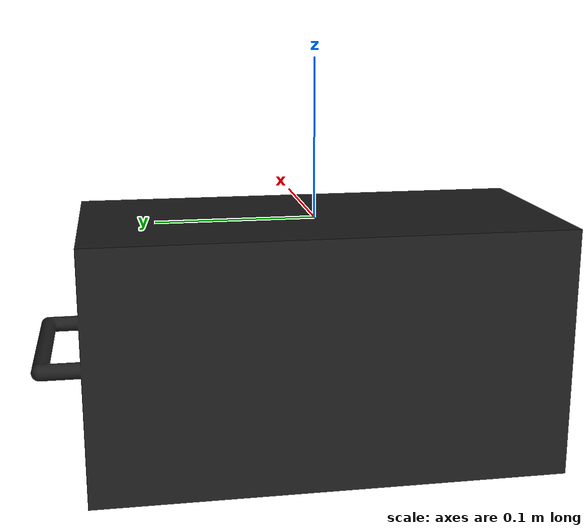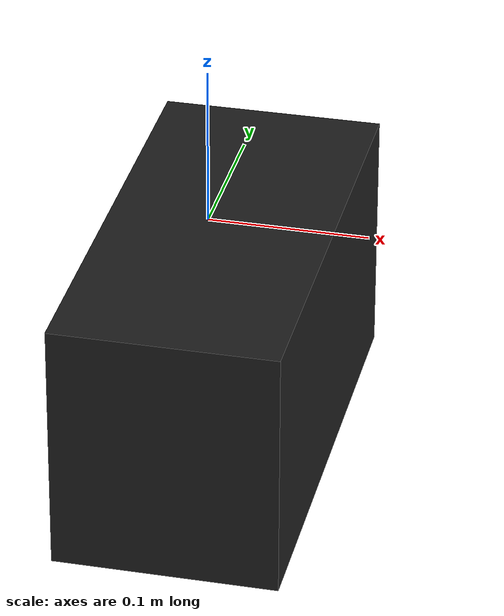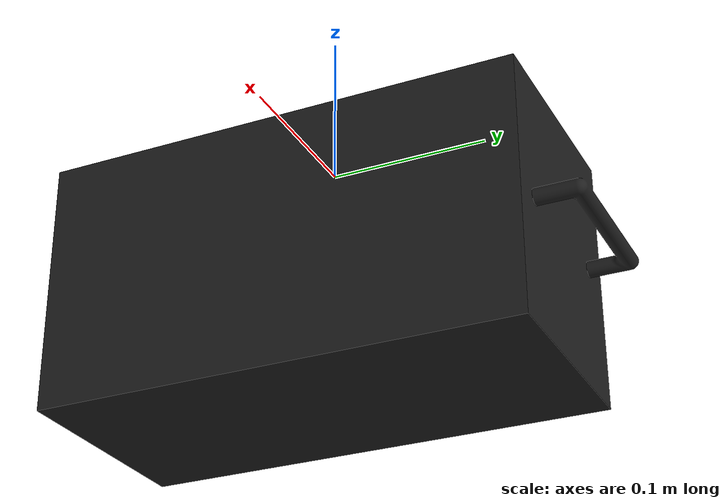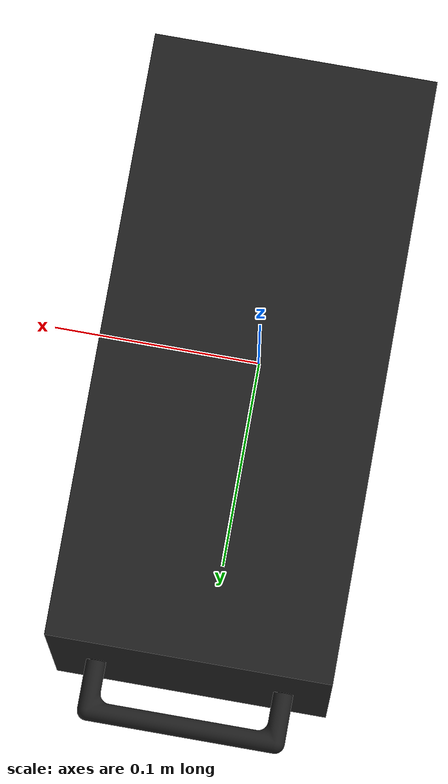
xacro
<?xml version="1.0"?>
<robot name="blackbox" xmlns:xacro="http://ros.org/wiki/xacro">
  <!-- Define a material with a texture -->
  <material name="blackbox_material">
    <texture filename="$(find bluerov2_description)/resources/blackbox/back.jpg"/>
  </material>
  <!-- Define the base link with visual and collision elements -->
  <link name="blackbox_center">
    <!-- Visual element using vis.obj and the defined material -->
    <visual>
      <origin xyz="0 0 0" rpy="1.57 0 -1.57"/>
      <geometry>
        <mesh filename="package://bluerov2_description/resources/blackbox/blackbox.dae" scale="1 1 1"/>
      </geometry>
      <material name="blackbox_material"/>
    </visual>
  </link>
</robot>
